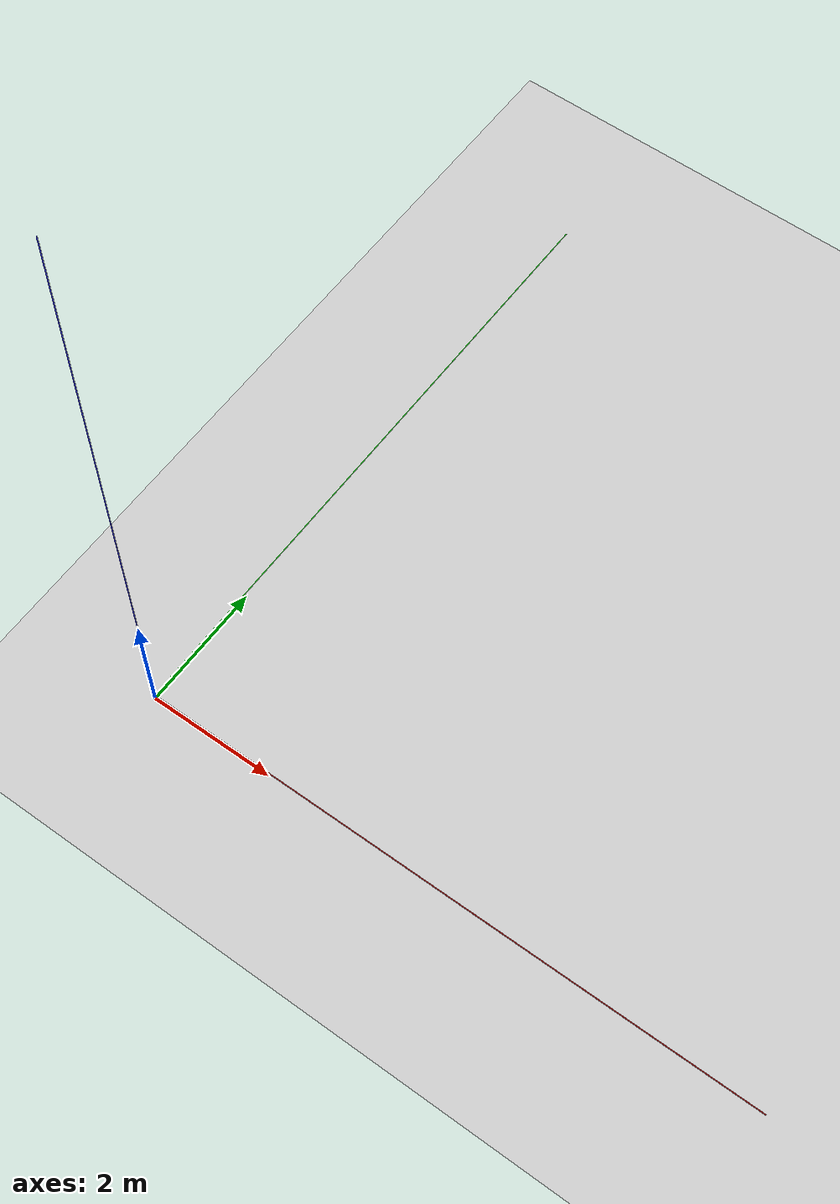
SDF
<?xml version="1.0" ?>
<sdf version="1.9">
  <world name="empty_world">
    <!-- Physics settings -->
    <physics name="1ms" type="ignored">
      <max_step_size>0.001</max_step_size>
      <real_time_factor>1.0</real_time_factor>
    </physics>

    <!-- Plugins -->
    <plugin filename="gz-sim-physics-system" name="gz::sim::systems::Physics"/>
    <plugin filename="gz-sim-user-commands-system" name="gz::sim::systems::UserCommands"/>
    <plugin filename="gz-sim-scene-broadcaster-system" name="gz::sim::systems::SceneBroadcaster"/>
    <plugin filename="gz-sim-contact-system" name="gz::sim::systems::Contact"/>
    <plugin filename="gz-sim-navsat-system" name="gz::sim::systems::NavSat"/>
    <plugin filename="gz-sim-imu-system" name="gz::sim::systems::Imu"/>

    <scene>
      <ambient>1.0 1.0 1.0</ambient>
      <background>0.8 0.8 0.8</background>
      <sky></sky>
    </scene>

    <spherical_coordinates>
      <latitude_deg>-35.363262</latitude_deg>
      <longitude_deg>149.165237</longitude_deg>
      <elevation>584</elevation>
      <heading_deg>0</heading_deg>
      <surface_model>EARTH_WGS84</surface_model>
    </spherical_coordinates>

    <!-- Default sun -->
    <light type="directional" name="sun">
      <cast_shadows>true</cast_shadows>
      <pose>0 0 10 0 0 0</pose>
      <diffuse>0.8 0.8 0.8 1</diffuse>
      <specular>0.2 0.2 0.2 1</specular>
      <attenuation>
        <range>1000</range>
        <constant>0.9</constant>
        <linear>0.01</linear>
        <quadratic>0.001</quadratic>
      </attenuation>
      <direction>-0.5 0.1 -0.9</direction>
    </light>
    <model name="ground_plane">
        <static>true</static>
        <link name="link">
            <collision name="collision">
            <geometry>
                <plane>
                <normal>0 0 1</normal>
                </plane>
            </geometry>
            </collision>
            <visual name="visual">
            <geometry>
                <plane>
                <normal>0 0 1</normal>
                <size>100 100</size>
                </plane>
            </geometry>
            <material>
                <ambient>0.8 0.8 0.8 1</ambient>
                <diffuse>0.8 0.8 0.8 1</diffuse>
                <specular>0.8 0.8 0.8 1</specular>
            </material>
            </visual>
        </link>
    </model>
    <model name="axes">
        <static>1</static>
        <link name="link">
            <visual name="r">
                <cast_shadows>0</cast_shadows>
                <pose>5 0 0.1 0 0 0</pose>
                <geometry>
                    <box>
                        <size>10 0.01 0.01</size>
                    </box>
                </geometry>
                <material>
                    <ambient>1 0 0 0.8</ambient>
                    <diffuse>1 0 0 0.8</diffuse>
                    <emissive>1 0 0 0.8</emissive>
                    <specular>0.5 0.5 0.5 0.8</specular>
                </material>
            </visual>
            <visual name="g">
                <cast_shadows>0</cast_shadows>
                <pose>0 5 0.1 0 0 0</pose>
                <geometry>
                    <box>
                        <size>0.01 10 0.01</size>
                    </box>
                </geometry>
                <material>
                    <ambient>0 1 0 0.8</ambient>
                    <diffuse>0 1 0 0.8</diffuse>
                    <emissive>0 1 0 0.8</emissive>
                    <specular>0.5 0.5 0.5 0.8</specular>
                </material>
            </visual>
            <visual name="b">
                <cast_shadows>0</cast_shadows>
                <pose>0 0 5.1 0 0 0</pose>
                <geometry>
                    <box>
                        <size>0.01 0.01 10</size>
                    </box>
                </geometry>
                <material>
                    <ambient>0 0 1 0.8</ambient>
                    <diffuse>0 0 1 0.8</diffuse>
                    <emissive>0 0 1 0.8</emissive>
                    <specular>0.5 0.5 0.5 0.8</specular>
                </material>
            </visual>
            <sensor name="navsat_sensor" type="navsat">
                <always_on>1</always_on>
                <update_rate>1</update_rate>
            </sensor>
        </link>
    </model>
  </world>
</sdf>
